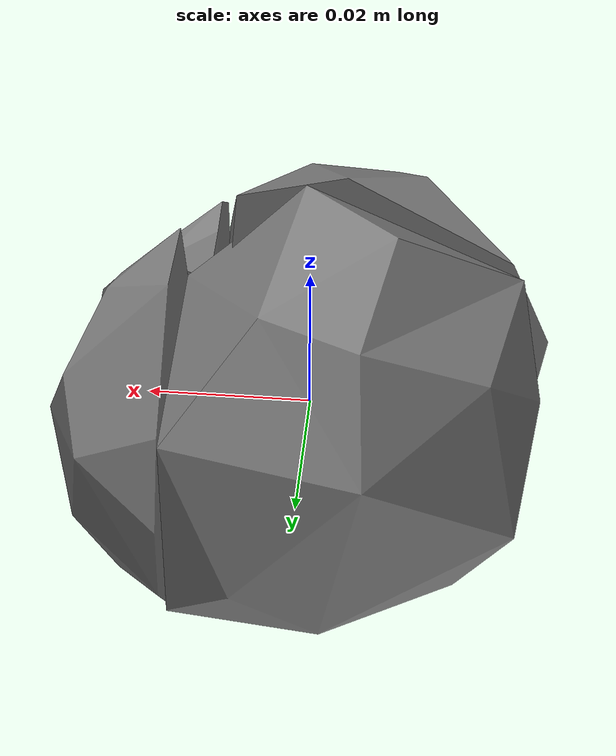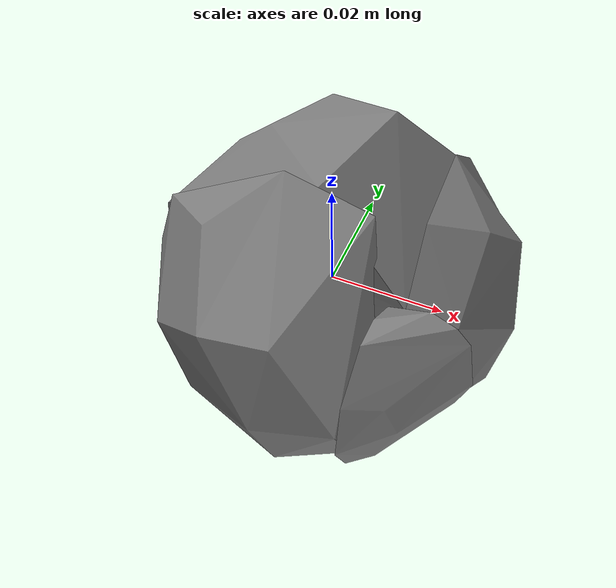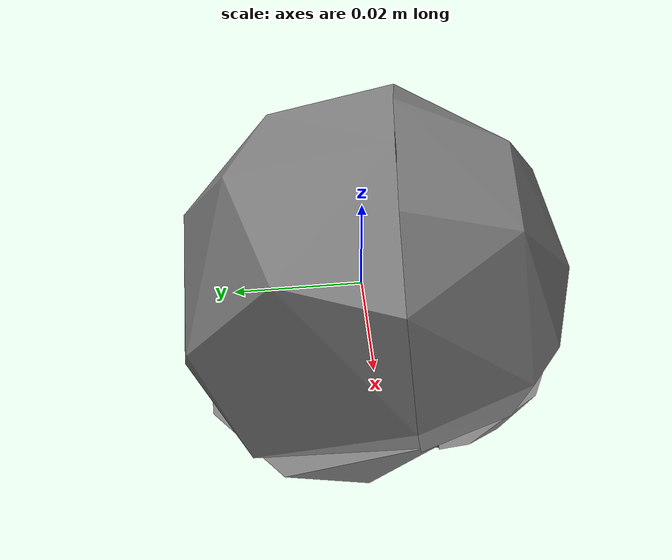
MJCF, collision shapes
<mujoco model="peach">
  <compiler angle="radian" />

  <asset>
    <mesh name="peach_visual_mesh" file="peach/textured.obj" />
    <mesh name="peach_collision_mesh_0" file="peach/textured_coacd_0.stl" />
    <mesh name="peach_collision_mesh_1" file="peach/textured_coacd_1.stl" />
    <mesh name="peach_collision_mesh_2" file="peach/textured_coacd_2.stl" />
    <mesh name="peach_collision_mesh_3" file="peach/textured_coacd_3.stl" />
    <texture name="peach_texture" type="2d" file="peach/texture_map.png" />
    <material name="peach_material" texture="peach_texture" />
  </asset>

  <worldbody>
    <body name="peach" pos="0 0 0" euler="0 0 0">
      <freejoint name="peach_joint" />
      <geom name="peach_visual_geom" type="mesh" mesh="peach_visual_mesh" material="peach_material" pos="0.015047325763457797 -0.006783997168206114 -0.028259603076768534" euler="0 0 0" contype="0" conaffinity="0" group="0" />
      <geom name="peach_collision_geom_0" type="mesh" mesh="peach_collision_mesh_0" pos="0.015047325763457797 -0.006783997168206114 -0.028259603076768534" euler="0 0 0" contype="1" conaffinity="1" group="3" />
      <geom name="peach_collision_geom_1" type="mesh" mesh="peach_collision_mesh_1" pos="0.015047325763457797 -0.006783997168206114 -0.028259603076768534" euler="0 0 0" contype="1" conaffinity="1" group="3" />
      <geom name="peach_collision_geom_2" type="mesh" mesh="peach_collision_mesh_2" pos="0.015047325763457797 -0.006783997168206114 -0.028259603076768534" euler="0 0 0" contype="1" conaffinity="1" group="3" />
      <geom name="peach_collision_geom_3" type="mesh" mesh="peach_collision_mesh_3" pos="0.015047325763457797 -0.006783997168206114 -0.028259603076768534" euler="0 0 0" contype="1" conaffinity="1" group="3" />
      <inertial pos="0 0 0" euler="0 0 0" mass="0.033" diaginertia="0.001 0.001 0.001" />
    </body>
  </worldbody>
</mujoco>
